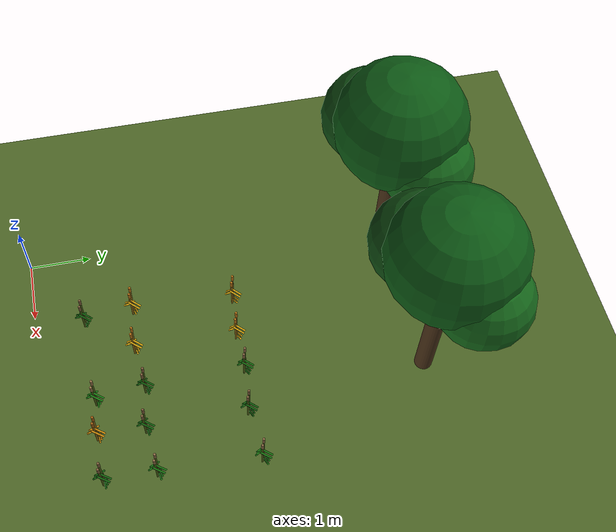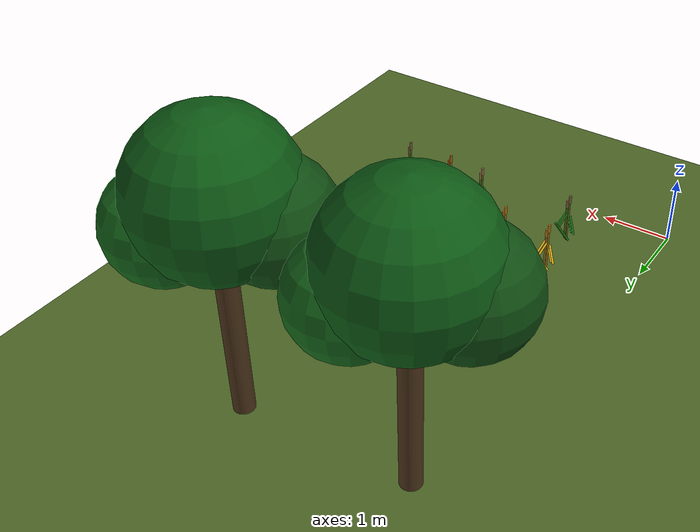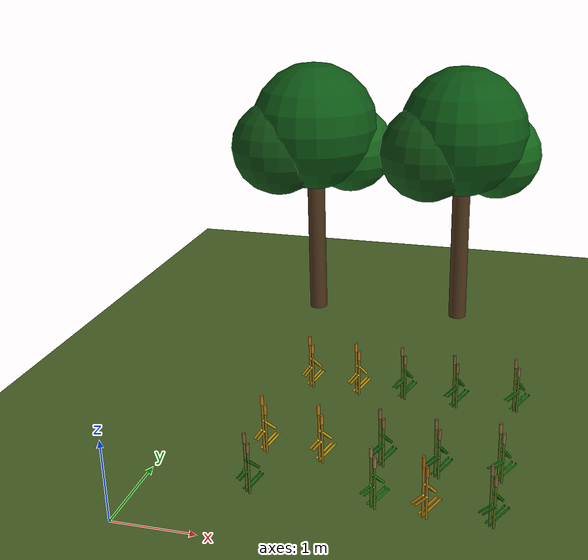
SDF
<sdf version="1.6">
 <world name="default">
  <model name="ground">
   <static>true</static>
   <link name="link">
    <collision name="col"><geometry><plane><normal>0 0 1</normal><size>40 40</size></plane></geometry></collision>
    <visual name="vis">
     <geometry><plane><normal>0 0 1</normal><size>40 40</size></plane></geometry>
     <material><ambient>0.30 0.40 0.15 1</ambient><diffuse>0.30 0.40 0.15 1</diffuse></material>
    </visual>
   </link>
  </model>
  <model name="plant_11">
   <static>true</static>
   <pose>1.25 0.82 0 0 0 0</pose>
   <link name="link">
    <visual name="stem_0">
     <pose>0.000 0.000 0.320 0.000 0.000 0.000</pose>
     <geometry><cylinder><radius>0.014</radius><length>0.64</length></cylinder></geometry>
     <material><ambient>0.30 0.38 0.08 1</ambient><diffuse>0.30 0.38 0.08 1</diffuse></material>
    </visual>
    <visual name="leaf_0_0">
     <pose>0.050 0.040 0.130 0.000 0.700 0.150</pose>
     <geometry><cylinder><radius>0.014</radius><length>0.3</length></cylinder></geometry>
     <material><ambient>0.08 0.42 0.05 1</ambient><diffuse>0.08 0.42 0.05 1</diffuse></material>
    </visual>
    <visual name="leaf_0_1">
     <pose>-0.050 -0.040 0.250 0.000 -0.720 2.400</pose>
     <geometry><cylinder><radius>0.014</radius><length>0.28</length></cylinder></geometry>
     <material><ambient>0.08 0.42 0.05 1</ambient><diffuse>0.08 0.42 0.05 1</diffuse></material>
    </visual>
    <visual name="leaf_0_2">
     <pose>0.050 0.040 0.360 0.000 0.780 4.400</pose>
     <geometry><cylinder><radius>0.014</radius><length>0.24</length></cylinder></geometry>
     <material><ambient>0.08 0.42 0.05 1</ambient><diffuse>0.08 0.42 0.05 1</diffuse></material>
    </visual>
    <visual name="ear_0">
     <pose>0.000 0.000 0.700 0.000 0.000 0.000</pose>
     <geometry><cylinder><radius>0.02</radius><length>0.12</length></cylinder></geometry>
     <material><ambient>0.48 0.36 0.22 1</ambient><diffuse>0.48 0.36 0.22 1</diffuse></material>
    </visual>
    <visual name="stem_1">
     <pose>0.045 -0.025 0.265 0.000 0.000 0.000</pose>
     <geometry><cylinder><radius>0.014</radius><length>0.53</length></cylinder></geometry>
     <material><ambient>0.30 0.38 0.08 1</ambient><diffuse>0.30 0.38 0.08 1</diffuse></material>
    </visual>
    <visual name="leaf_1_0">
     <pose>0.095 0.015 0.130 0.000 0.700 0.150</pose>
     <geometry><cylinder><radius>0.014</radius><length>0.3</length></cylinder></geometry>
     <material><ambient>0.08 0.42 0.05 1</ambient><diffuse>0.08 0.42 0.05 1</diffuse></material>
    </visual>
    <visual name="leaf_1_1">
     <pose>-0.005 -0.065 0.250 0.000 -0.720 2.400</pose>
     <geometry><cylinder><radius>0.014</radius><length>0.28</length></cylinder></geometry>
     <material><ambient>0.08 0.42 0.05 1</ambient><diffuse>0.08 0.42 0.05 1</diffuse></material>
    </visual>
    <visual name="leaf_1_2">
     <pose>0.095 0.015 0.360 0.000 0.780 4.400</pose>
     <geometry><cylinder><radius>0.014</radius><length>0.24</length></cylinder></geometry>
     <material><ambient>0.08 0.42 0.05 1</ambient><diffuse>0.08 0.42 0.05 1</diffuse></material>
    </visual>
    <visual name="ear_1">
     <pose>0.045 -0.025 0.590 0.000 0.000 0.000</pose>
     <geometry><cylinder><radius>0.02</radius><length>0.12</length></cylinder></geometry>
     <material><ambient>0.48 0.36 0.22 1</ambient><diffuse>0.48 0.36 0.22 1</diffuse></material>
    </visual>
   </link>
  </model>
  <model name="plant_13">
   <static>true</static>
   <pose>2.68 0.86 0 0 0 0</pose>
   <link name="link">
    <visual name="stem_0">
     <pose>0.000 0.000 0.320 0.000 0.000 0.000</pose>
     <geometry><cylinder><radius>0.014</radius><length>0.64</length></cylinder></geometry>
     <material><ambient>0.30 0.38 0.08 1</ambient><diffuse>0.30 0.38 0.08 1</diffuse></material>
    </visual>
    <visual name="leaf_0_0">
     <pose>0.050 0.040 0.130 0.000 0.700 0.150</pose>
     <geometry><cylinder><radius>0.014</radius><length>0.3</length></cylinder></geometry>
     <material><ambient>0.12 0.55 0.08 1</ambient><diffuse>0.12 0.55 0.08 1</diffuse></material>
    </visual>
    <visual name="leaf_0_1">
     <pose>-0.050 -0.040 0.250 0.000 -0.720 2.400</pose>
     <geometry><cylinder><radius>0.014</radius><length>0.28</length></cylinder></geometry>
     <material><ambient>0.12 0.55 0.08 1</ambient><diffuse>0.12 0.55 0.08 1</diffuse></material>
    </visual>
    <visual name="leaf_0_2">
     <pose>0.050 0.040 0.360 0.000 0.780 4.400</pose>
     <geometry><cylinder><radius>0.014</radius><length>0.24</length></cylinder></geometry>
     <material><ambient>0.12 0.55 0.08 1</ambient><diffuse>0.12 0.55 0.08 1</diffuse></material>
    </visual>
    <visual name="ear_0">
     <pose>0.000 0.000 0.700 0.000 0.000 0.000</pose>
     <geometry><cylinder><radius>0.02</radius><length>0.12</length></cylinder></geometry>
     <material><ambient>0.56 0.43 0.26 1</ambient><diffuse>0.56 0.43 0.26 1</diffuse></material>
    </visual>
    <visual name="stem_1">
     <pose>0.045 -0.025 0.265 0.000 0.000 0.000</pose>
     <geometry><cylinder><radius>0.014</radius><length>0.53</length></cylinder></geometry>
     <material><ambient>0.30 0.38 0.08 1</ambient><diffuse>0.30 0.38 0.08 1</diffuse></material>
    </visual>
    <visual name="leaf_1_0">
     <pose>0.095 0.015 0.130 0.000 0.700 0.150</pose>
     <geometry><cylinder><radius>0.014</radius><length>0.3</length></cylinder></geometry>
     <material><ambient>0.12 0.55 0.08 1</ambient><diffuse>0.12 0.55 0.08 1</diffuse></material>
    </visual>
    <visual name="leaf_1_1">
     <pose>-0.005 -0.065 0.250 0.000 -0.720 2.400</pose>
     <geometry><cylinder><radius>0.014</radius><length>0.28</length></cylinder></geometry>
     <material><ambient>0.12 0.55 0.08 1</ambient><diffuse>0.12 0.55 0.08 1</diffuse></material>
    </visual>
    <visual name="leaf_1_2">
     <pose>0.095 0.015 0.360 0.000 0.780 4.400</pose>
     <geometry><cylinder><radius>0.014</radius><length>0.24</length></cylinder></geometry>
     <material><ambient>0.12 0.55 0.08 1</ambient><diffuse>0.12 0.55 0.08 1</diffuse></material>
    </visual>
    <visual name="ear_1">
     <pose>0.045 -0.025 0.590 0.000 0.000 0.000</pose>
     <geometry><cylinder><radius>0.02</radius><length>0.12</length></cylinder></geometry>
     <material><ambient>0.56 0.43 0.26 1</ambient><diffuse>0.56 0.43 0.26 1</diffuse></material>
    </visual>
   </link>
  </model>
  <model name="plant_14">
   <static>true</static>
   <pose>3.26 0.82 0 0 0 0</pose>
   <link name="link">
    <visual name="stem_0">
     <pose>0.000 0.000 0.320 0.000 0.000 0.000</pose>
     <geometry><cylinder><radius>0.014</radius><length>0.64</length></cylinder></geometry>
     <material><ambient>0.55 0.42 0.08 1</ambient><diffuse>0.55 0.42 0.08 1</diffuse></material>
    </visual>
    <visual name="leaf_0_0">
     <pose>0.050 0.040 0.130 0.000 0.700 0.150</pose>
     <geometry><cylinder><radius>0.014</radius><length>0.3</length></cylinder></geometry>
     <material><ambient>0.86 0.58 0.04 1</ambient><diffuse>0.86 0.58 0.04 1</diffuse></material>
    </visual>
    <visual name="leaf_0_1">
     <pose>-0.050 -0.040 0.250 0.000 -0.720 2.400</pose>
     <geometry><cylinder><radius>0.014</radius><length>0.28</length></cylinder></geometry>
     <material><ambient>0.86 0.58 0.04 1</ambient><diffuse>0.86 0.58 0.04 1</diffuse></material>
    </visual>
    <visual name="leaf_0_2">
     <pose>0.050 0.040 0.360 0.000 0.780 4.400</pose>
     <geometry><cylinder><radius>0.014</radius><length>0.24</length></cylinder></geometry>
     <material><ambient>0.86 0.58 0.04 1</ambient><diffuse>0.86 0.58 0.04 1</diffuse></material>
    </visual>
    <visual name="ear_0">
     <pose>0.000 0.000 0.700 0.000 0.000 0.000</pose>
     <geometry><cylinder><radius>0.02</radius><length>0.12</length></cylinder></geometry>
     <material><ambient>0.62 0.36 0.06 1</ambient><diffuse>0.62 0.36 0.06 1</diffuse></material>
    </visual>
    <visual name="stem_1">
     <pose>0.045 -0.025 0.265 0.000 0.000 0.000</pose>
     <geometry><cylinder><radius>0.014</radius><length>0.53</length></cylinder></geometry>
     <material><ambient>0.55 0.42 0.08 1</ambient><diffuse>0.55 0.42 0.08 1</diffuse></material>
    </visual>
    <visual name="leaf_1_0">
     <pose>0.095 0.015 0.130 0.000 0.700 0.150</pose>
     <geometry><cylinder><radius>0.014</radius><length>0.3</length></cylinder></geometry>
     <material><ambient>0.86 0.58 0.04 1</ambient><diffuse>0.86 0.58 0.04 1</diffuse></material>
    </visual>
    <visual name="leaf_1_1">
     <pose>-0.005 -0.065 0.250 0.000 -0.720 2.400</pose>
     <geometry><cylinder><radius>0.014</radius><length>0.28</length></cylinder></geometry>
     <material><ambient>0.86 0.58 0.04 1</ambient><diffuse>0.86 0.58 0.04 1</diffuse></material>
    </visual>
    <visual name="leaf_1_2">
     <pose>0.095 0.015 0.360 0.000 0.780 4.400</pose>
     <geometry><cylinder><radius>0.014</radius><length>0.24</length></cylinder></geometry>
     <material><ambient>0.86 0.58 0.04 1</ambient><diffuse>0.86 0.58 0.04 1</diffuse></material>
    </visual>
    <visual name="ear_1">
     <pose>0.045 -0.025 0.590 0.000 0.000 0.000</pose>
     <geometry><cylinder><radius>0.02</radius><length>0.12</length></cylinder></geometry>
     <material><ambient>0.62 0.36 0.06 1</ambient><diffuse>0.62 0.36 0.06 1</diffuse></material>
    </visual>
   </link>
  </model>
  <model name="plant_15">
   <static>true</static>
   <pose>3.98 0.83 0 0 0 0</pose>
   <link name="link">
    <visual name="stem_0">
     <pose>0.000 0.000 0.320 0.000 0.000 0.000</pose>
     <geometry><cylinder><radius>0.014</radius><length>0.64</length></cylinder></geometry>
     <material><ambient>0.30 0.38 0.08 1</ambient><diffuse>0.30 0.38 0.08 1</diffuse></material>
    </visual>
    <visual name="leaf_0_0">
     <pose>0.050 0.040 0.130 0.000 0.700 0.150</pose>
     <geometry><cylinder><radius>0.014</radius><length>0.3</length></cylinder></geometry>
     <material><ambient>0.08 0.42 0.05 1</ambient><diffuse>0.08 0.42 0.05 1</diffuse></material>
    </visual>
    <visual name="leaf_0_1">
     <pose>-0.050 -0.040 0.250 0.000 -0.720 2.400</pose>
     <geometry><cylinder><radius>0.014</radius><length>0.28</length></cylinder></geometry>
     <material><ambient>0.08 0.42 0.05 1</ambient><diffuse>0.08 0.42 0.05 1</diffuse></material>
    </visual>
    <visual name="leaf_0_2">
     <pose>0.050 0.040 0.360 0.000 0.780 4.400</pose>
     <geometry><cylinder><radius>0.014</radius><length>0.24</length></cylinder></geometry>
     <material><ambient>0.08 0.42 0.05 1</ambient><diffuse>0.08 0.42 0.05 1</diffuse></material>
    </visual>
    <visual name="ear_0">
     <pose>0.000 0.000 0.700 0.000 0.000 0.000</pose>
     <geometry><cylinder><radius>0.02</radius><length>0.12</length></cylinder></geometry>
     <material><ambient>0.48 0.36 0.22 1</ambient><diffuse>0.48 0.36 0.22 1</diffuse></material>
    </visual>
    <visual name="stem_1">
     <pose>0.045 -0.025 0.265 0.000 0.000 0.000</pose>
     <geometry><cylinder><radius>0.014</radius><length>0.53</length></cylinder></geometry>
     <material><ambient>0.30 0.38 0.08 1</ambient><diffuse>0.30 0.38 0.08 1</diffuse></material>
    </visual>
    <visual name="leaf_1_0">
     <pose>0.095 0.015 0.130 0.000 0.700 0.150</pose>
     <geometry><cylinder><radius>0.014</radius><length>0.3</length></cylinder></geometry>
     <material><ambient>0.08 0.42 0.05 1</ambient><diffuse>0.08 0.42 0.05 1</diffuse></material>
    </visual>
    <visual name="leaf_1_1">
     <pose>-0.005 -0.065 0.250 0.000 -0.720 2.400</pose>
     <geometry><cylinder><radius>0.014</radius><length>0.28</length></cylinder></geometry>
     <material><ambient>0.08 0.42 0.05 1</ambient><diffuse>0.08 0.42 0.05 1</diffuse></material>
    </visual>
    <visual name="leaf_1_2">
     <pose>0.095 0.015 0.360 0.000 0.780 4.400</pose>
     <geometry><cylinder><radius>0.014</radius><length>0.24</length></cylinder></geometry>
     <material><ambient>0.08 0.42 0.05 1</ambient><diffuse>0.08 0.42 0.05 1</diffuse></material>
    </visual>
    <visual name="ear_1">
     <pose>0.045 -0.025 0.590 0.000 0.000 0.000</pose>
     <geometry><cylinder><radius>0.02</radius><length>0.12</length></cylinder></geometry>
     <material><ambient>0.48 0.36 0.22 1</ambient><diffuse>0.48 0.36 0.22 1</diffuse></material>
    </visual>
   </link>
  </model>
  <model name="plant_21">
   <static>true</static>
   <pose>1.17 1.62 0 0 0 0</pose>
   <link name="link">
    <visual name="stem_0">
     <pose>0.000 0.000 0.320 0.000 0.000 0.000</pose>
     <geometry><cylinder><radius>0.014</radius><length>0.64</length></cylinder></geometry>
     <material><ambient>0.55 0.42 0.08 1</ambient><diffuse>0.55 0.42 0.08 1</diffuse></material>
    </visual>
    <visual name="leaf_0_0">
     <pose>0.050 0.040 0.130 0.000 0.700 0.150</pose>
     <geometry><cylinder><radius>0.014</radius><length>0.3</length></cylinder></geometry>
     <material><ambient>0.95 0.73 0.06 1</ambient><diffuse>0.95 0.73 0.06 1</diffuse></material>
    </visual>
    <visual name="leaf_0_1">
     <pose>-0.050 -0.040 0.250 0.000 -0.720 2.400</pose>
     <geometry><cylinder><radius>0.014</radius><length>0.28</length></cylinder></geometry>
     <material><ambient>0.95 0.73 0.06 1</ambient><diffuse>0.95 0.73 0.06 1</diffuse></material>
    </visual>
    <visual name="leaf_0_2">
     <pose>0.050 0.040 0.360 0.000 0.780 4.400</pose>
     <geometry><cylinder><radius>0.014</radius><length>0.24</length></cylinder></geometry>
     <material><ambient>0.95 0.73 0.06 1</ambient><diffuse>0.95 0.73 0.06 1</diffuse></material>
    </visual>
    <visual name="ear_0">
     <pose>0.000 0.000 0.700 0.000 0.000 0.000</pose>
     <geometry><cylinder><radius>0.02</radius><length>0.12</length></cylinder></geometry>
     <material><ambient>0.72 0.45 0.08 1</ambient><diffuse>0.72 0.45 0.08 1</diffuse></material>
    </visual>
    <visual name="stem_1">
     <pose>0.045 -0.025 0.265 0.000 0.000 0.000</pose>
     <geometry><cylinder><radius>0.014</radius><length>0.53</length></cylinder></geometry>
     <material><ambient>0.55 0.42 0.08 1</ambient><diffuse>0.55 0.42 0.08 1</diffuse></material>
    </visual>
    <visual name="leaf_1_0">
     <pose>0.095 0.015 0.130 0.000 0.700 0.150</pose>
     <geometry><cylinder><radius>0.014</radius><length>0.3</length></cylinder></geometry>
     <material><ambient>0.95 0.73 0.06 1</ambient><diffuse>0.95 0.73 0.06 1</diffuse></material>
    </visual>
    <visual name="leaf_1_1">
     <pose>-0.005 -0.065 0.250 0.000 -0.720 2.400</pose>
     <geometry><cylinder><radius>0.014</radius><length>0.28</length></cylinder></geometry>
     <material><ambient>0.95 0.73 0.06 1</ambient><diffuse>0.95 0.73 0.06 1</diffuse></material>
    </visual>
    <visual name="leaf_1_2">
     <pose>0.095 0.015 0.360 0.000 0.780 4.400</pose>
     <geometry><cylinder><radius>0.014</radius><length>0.24</length></cylinder></geometry>
     <material><ambient>0.95 0.73 0.06 1</ambient><diffuse>0.95 0.73 0.06 1</diffuse></material>
    </visual>
    <visual name="ear_1">
     <pose>0.045 -0.025 0.590 0.000 0.000 0.000</pose>
     <geometry><cylinder><radius>0.02</radius><length>0.12</length></cylinder></geometry>
     <material><ambient>0.72 0.45 0.08 1</ambient><diffuse>0.72 0.45 0.08 1</diffuse></material>
    </visual>
   </link>
  </model>
  <model name="plant_22">
   <static>true</static>
   <pose>1.89 1.56 0 0 0 0</pose>
   <link name="link">
    <visual name="stem_0">
     <pose>0.000 0.000 0.320 0.000 0.000 0.000</pose>
     <geometry><cylinder><radius>0.014</radius><length>0.64</length></cylinder></geometry>
     <material><ambient>0.55 0.42 0.08 1</ambient><diffuse>0.55 0.42 0.08 1</diffuse></material>
    </visual>
    <visual name="leaf_0_0">
     <pose>0.050 0.040 0.130 0.000 0.700 0.150</pose>
     <geometry><cylinder><radius>0.014</radius><length>0.3</length></cylinder></geometry>
     <material><ambient>0.95 0.73 0.06 1</ambient><diffuse>0.95 0.73 0.06 1</diffuse></material>
    </visual>
    <visual name="leaf_0_1">
     <pose>-0.050 -0.040 0.250 0.000 -0.720 2.400</pose>
     <geometry><cylinder><radius>0.014</radius><length>0.28</length></cylinder></geometry>
     <material><ambient>0.95 0.73 0.06 1</ambient><diffuse>0.95 0.73 0.06 1</diffuse></material>
    </visual>
    <visual name="leaf_0_2">
     <pose>0.050 0.040 0.360 0.000 0.780 4.400</pose>
     <geometry><cylinder><radius>0.014</radius><length>0.24</length></cylinder></geometry>
     <material><ambient>0.95 0.73 0.06 1</ambient><diffuse>0.95 0.73 0.06 1</diffuse></material>
    </visual>
    <visual name="ear_0">
     <pose>0.000 0.000 0.700 0.000 0.000 0.000</pose>
     <geometry><cylinder><radius>0.02</radius><length>0.12</length></cylinder></geometry>
     <material><ambient>0.72 0.45 0.08 1</ambient><diffuse>0.72 0.45 0.08 1</diffuse></material>
    </visual>
    <visual name="stem_1">
     <pose>0.045 -0.025 0.265 0.000 0.000 0.000</pose>
     <geometry><cylinder><radius>0.014</radius><length>0.53</length></cylinder></geometry>
     <material><ambient>0.55 0.42 0.08 1</ambient><diffuse>0.55 0.42 0.08 1</diffuse></material>
    </visual>
    <visual name="leaf_1_0">
     <pose>0.095 0.015 0.130 0.000 0.700 0.150</pose>
     <geometry><cylinder><radius>0.014</radius><length>0.3</length></cylinder></geometry>
     <material><ambient>0.95 0.73 0.06 1</ambient><diffuse>0.95 0.73 0.06 1</diffuse></material>
    </visual>
    <visual name="leaf_1_1">
     <pose>-0.005 -0.065 0.250 0.000 -0.720 2.400</pose>
     <geometry><cylinder><radius>0.014</radius><length>0.28</length></cylinder></geometry>
     <material><ambient>0.95 0.73 0.06 1</ambient><diffuse>0.95 0.73 0.06 1</diffuse></material>
    </visual>
    <visual name="leaf_1_2">
     <pose>0.095 0.015 0.360 0.000 0.780 4.400</pose>
     <geometry><cylinder><radius>0.014</radius><length>0.24</length></cylinder></geometry>
     <material><ambient>0.95 0.73 0.06 1</ambient><diffuse>0.95 0.73 0.06 1</diffuse></material>
    </visual>
    <visual name="ear_1">
     <pose>0.045 -0.025 0.590 0.000 0.000 0.000</pose>
     <geometry><cylinder><radius>0.02</radius><length>0.12</length></cylinder></geometry>
     <material><ambient>0.72 0.45 0.08 1</ambient><diffuse>0.72 0.45 0.08 1</diffuse></material>
    </visual>
   </link>
  </model>
  <model name="plant_23">
   <static>true</static>
   <pose>2.61 1.64 0 0 0 0</pose>
   <link name="link">
    <visual name="stem_0">
     <pose>0.000 0.000 0.320 0.000 0.000 0.000</pose>
     <geometry><cylinder><radius>0.014</radius><length>0.64</length></cylinder></geometry>
     <material><ambient>0.30 0.38 0.08 1</ambient><diffuse>0.30 0.38 0.08 1</diffuse></material>
    </visual>
    <visual name="leaf_0_0">
     <pose>0.050 0.040 0.130 0.000 0.700 0.150</pose>
     <geometry><cylinder><radius>0.014</radius><length>0.3</length></cylinder></geometry>
     <material><ambient>0.08 0.42 0.05 1</ambient><diffuse>0.08 0.42 0.05 1</diffuse></material>
    </visual>
    <visual name="leaf_0_1">
     <pose>-0.050 -0.040 0.250 0.000 -0.720 2.400</pose>
     <geometry><cylinder><radius>0.014</radius><length>0.28</length></cylinder></geometry>
     <material><ambient>0.08 0.42 0.05 1</ambient><diffuse>0.08 0.42 0.05 1</diffuse></material>
    </visual>
    <visual name="leaf_0_2">
     <pose>0.050 0.040 0.360 0.000 0.780 4.400</pose>
     <geometry><cylinder><radius>0.014</radius><length>0.24</length></cylinder></geometry>
     <material><ambient>0.08 0.42 0.05 1</ambient><diffuse>0.08 0.42 0.05 1</diffuse></material>
    </visual>
    <visual name="ear_0">
     <pose>0.000 0.000 0.700 0.000 0.000 0.000</pose>
     <geometry><cylinder><radius>0.02</radius><length>0.12</length></cylinder></geometry>
     <material><ambient>0.48 0.36 0.22 1</ambient><diffuse>0.48 0.36 0.22 1</diffuse></material>
    </visual>
    <visual name="stem_1">
     <pose>0.045 -0.025 0.265 0.000 0.000 0.000</pose>
     <geometry><cylinder><radius>0.014</radius><length>0.53</length></cylinder></geometry>
     <material><ambient>0.30 0.38 0.08 1</ambient><diffuse>0.30 0.38 0.08 1</diffuse></material>
    </visual>
    <visual name="leaf_1_0">
     <pose>0.095 0.015 0.130 0.000 0.700 0.150</pose>
     <geometry><cylinder><radius>0.014</radius><length>0.3</length></cylinder></geometry>
     <material><ambient>0.08 0.42 0.05 1</ambient><diffuse>0.08 0.42 0.05 1</diffuse></material>
    </visual>
    <visual name="leaf_1_1">
     <pose>-0.005 -0.065 0.250 0.000 -0.720 2.400</pose>
     <geometry><cylinder><radius>0.014</radius><length>0.28</length></cylinder></geometry>
     <material><ambient>0.08 0.42 0.05 1</ambient><diffuse>0.08 0.42 0.05 1</diffuse></material>
    </visual>
    <visual name="leaf_1_2">
     <pose>0.095 0.015 0.360 0.000 0.780 4.400</pose>
     <geometry><cylinder><radius>0.014</radius><length>0.24</length></cylinder></geometry>
     <material><ambient>0.08 0.42 0.05 1</ambient><diffuse>0.08 0.42 0.05 1</diffuse></material>
    </visual>
    <visual name="ear_1">
     <pose>0.045 -0.025 0.590 0.000 0.000 0.000</pose>
     <geometry><cylinder><radius>0.02</radius><length>0.12</length></cylinder></geometry>
     <material><ambient>0.48 0.36 0.22 1</ambient><diffuse>0.48 0.36 0.22 1</diffuse></material>
    </visual>
   </link>
  </model>
  <model name="plant_24">
   <static>true</static>
   <pose>3.28 1.56 0 0 0 0</pose>
   <link name="link">
    <visual name="stem_0">
     <pose>0.000 0.000 0.320 0.000 0.000 0.000</pose>
     <geometry><cylinder><radius>0.014</radius><length>0.64</length></cylinder></geometry>
     <material><ambient>0.30 0.38 0.08 1</ambient><diffuse>0.30 0.38 0.08 1</diffuse></material>
    </visual>
    <visual name="leaf_0_0">
     <pose>0.050 0.040 0.130 0.000 0.700 0.150</pose>
     <geometry><cylinder><radius>0.014</radius><length>0.3</length></cylinder></geometry>
     <material><ambient>0.08 0.42 0.05 1</ambient><diffuse>0.08 0.42 0.05 1</diffuse></material>
    </visual>
    <visual name="leaf_0_1">
     <pose>-0.050 -0.040 0.250 0.000 -0.720 2.400</pose>
     <geometry><cylinder><radius>0.014</radius><length>0.28</length></cylinder></geometry>
     <material><ambient>0.08 0.42 0.05 1</ambient><diffuse>0.08 0.42 0.05 1</diffuse></material>
    </visual>
    <visual name="leaf_0_2">
     <pose>0.050 0.040 0.360 0.000 0.780 4.400</pose>
     <geometry><cylinder><radius>0.014</radius><length>0.24</length></cylinder></geometry>
     <material><ambient>0.08 0.42 0.05 1</ambient><diffuse>0.08 0.42 0.05 1</diffuse></material>
    </visual>
    <visual name="ear_0">
     <pose>0.000 0.000 0.700 0.000 0.000 0.000</pose>
     <geometry><cylinder><radius>0.02</radius><length>0.12</length></cylinder></geometry>
     <material><ambient>0.48 0.36 0.22 1</ambient><diffuse>0.48 0.36 0.22 1</diffuse></material>
    </visual>
    <visual name="stem_1">
     <pose>0.045 -0.025 0.265 0.000 0.000 0.000</pose>
     <geometry><cylinder><radius>0.014</radius><length>0.53</length></cylinder></geometry>
     <material><ambient>0.30 0.38 0.08 1</ambient><diffuse>0.30 0.38 0.08 1</diffuse></material>
    </visual>
    <visual name="leaf_1_0">
     <pose>0.095 0.015 0.130 0.000 0.700 0.150</pose>
     <geometry><cylinder><radius>0.014</radius><length>0.3</length></cylinder></geometry>
     <material><ambient>0.08 0.42 0.05 1</ambient><diffuse>0.08 0.42 0.05 1</diffuse></material>
    </visual>
    <visual name="leaf_1_1">
     <pose>-0.005 -0.065 0.250 0.000 -0.720 2.400</pose>
     <geometry><cylinder><radius>0.014</radius><length>0.28</length></cylinder></geometry>
     <material><ambient>0.08 0.42 0.05 1</ambient><diffuse>0.08 0.42 0.05 1</diffuse></material>
    </visual>
    <visual name="leaf_1_2">
     <pose>0.095 0.015 0.360 0.000 0.780 4.400</pose>
     <geometry><cylinder><radius>0.014</radius><length>0.24</length></cylinder></geometry>
     <material><ambient>0.08 0.42 0.05 1</ambient><diffuse>0.08 0.42 0.05 1</diffuse></material>
    </visual>
    <visual name="ear_1">
     <pose>0.045 -0.025 0.590 0.000 0.000 0.000</pose>
     <geometry><cylinder><radius>0.02</radius><length>0.12</length></cylinder></geometry>
     <material><ambient>0.48 0.36 0.22 1</ambient><diffuse>0.48 0.36 0.22 1</diffuse></material>
    </visual>
   </link>
  </model>
  <model name="plant_25">
   <static>true</static>
   <pose>4.00 1.64 0 0 0 0</pose>
   <link name="link">
    <visual name="stem_0">
     <pose>0.000 0.000 0.320 0.000 0.000 0.000</pose>
     <geometry><cylinder><radius>0.014</radius><length>0.64</length></cylinder></geometry>
     <material><ambient>0.30 0.38 0.08 1</ambient><diffuse>0.30 0.38 0.08 1</diffuse></material>
    </visual>
    <visual name="leaf_0_0">
     <pose>0.050 0.040 0.130 0.000 0.700 0.150</pose>
     <geometry><cylinder><radius>0.014</radius><length>0.3</length></cylinder></geometry>
     <material><ambient>0.10 0.48 0.06 1</ambient><diffuse>0.10 0.48 0.06 1</diffuse></material>
    </visual>
    <visual name="leaf_0_1">
     <pose>-0.050 -0.040 0.250 0.000 -0.720 2.400</pose>
     <geometry><cylinder><radius>0.014</radius><length>0.28</length></cylinder></geometry>
     <material><ambient>0.10 0.48 0.06 1</ambient><diffuse>0.10 0.48 0.06 1</diffuse></material>
    </visual>
    <visual name="leaf_0_2">
     <pose>0.050 0.040 0.360 0.000 0.780 4.400</pose>
     <geometry><cylinder><radius>0.014</radius><length>0.24</length></cylinder></geometry>
     <material><ambient>0.10 0.48 0.06 1</ambient><diffuse>0.10 0.48 0.06 1</diffuse></material>
    </visual>
    <visual name="ear_0">
     <pose>0.000 0.000 0.700 0.000 0.000 0.000</pose>
     <geometry><cylinder><radius>0.02</radius><length>0.12</length></cylinder></geometry>
     <material><ambient>0.52 0.40 0.25 1</ambient><diffuse>0.52 0.40 0.25 1</diffuse></material>
    </visual>
    <visual name="stem_1">
     <pose>0.045 -0.025 0.265 0.000 0.000 0.000</pose>
     <geometry><cylinder><radius>0.014</radius><length>0.53</length></cylinder></geometry>
     <material><ambient>0.30 0.38 0.08 1</ambient><diffuse>0.30 0.38 0.08 1</diffuse></material>
    </visual>
    <visual name="leaf_1_0">
     <pose>0.095 0.015 0.130 0.000 0.700 0.150</pose>
     <geometry><cylinder><radius>0.014</radius><length>0.3</length></cylinder></geometry>
     <material><ambient>0.10 0.48 0.06 1</ambient><diffuse>0.10 0.48 0.06 1</diffuse></material>
    </visual>
    <visual name="leaf_1_1">
     <pose>-0.005 -0.065 0.250 0.000 -0.720 2.400</pose>
     <geometry><cylinder><radius>0.014</radius><length>0.28</length></cylinder></geometry>
     <material><ambient>0.10 0.48 0.06 1</ambient><diffuse>0.10 0.48 0.06 1</diffuse></material>
    </visual>
    <visual name="leaf_1_2">
     <pose>0.095 0.015 0.360 0.000 0.780 4.400</pose>
     <geometry><cylinder><radius>0.014</radius><length>0.24</length></cylinder></geometry>
     <material><ambient>0.10 0.48 0.06 1</ambient><diffuse>0.10 0.48 0.06 1</diffuse></material>
    </visual>
    <visual name="ear_1">
     <pose>0.045 -0.025 0.590 0.000 0.000 0.000</pose>
     <geometry><cylinder><radius>0.02</radius><length>0.12</length></cylinder></geometry>
     <material><ambient>0.52 0.40 0.25 1</ambient><diffuse>0.52 0.40 0.25 1</diffuse></material>
    </visual>
   </link>
  </model>
  <model name="plant_31">
   <static>true</static>
   <pose>1.27 3.26 0 0 0 0</pose>
   <link name="link">
    <visual name="stem_0">
     <pose>0.000 0.000 0.320 0.000 0.000 0.000</pose>
     <geometry><cylinder><radius>0.014</radius><length>0.64</length></cylinder></geometry>
     <material><ambient>0.55 0.42 0.08 1</ambient><diffuse>0.55 0.42 0.08 1</diffuse></material>
    </visual>
    <visual name="leaf_0_0">
     <pose>0.050 0.040 0.130 0.000 0.700 0.150</pose>
     <geometry><cylinder><radius>0.014</radius><length>0.3</length></cylinder></geometry>
     <material><ambient>0.95 0.73 0.06 1</ambient><diffuse>0.95 0.73 0.06 1</diffuse></material>
    </visual>
    <visual name="leaf_0_1">
     <pose>-0.050 -0.040 0.250 0.000 -0.720 2.400</pose>
     <geometry><cylinder><radius>0.014</radius><length>0.28</length></cylinder></geometry>
     <material><ambient>0.95 0.73 0.06 1</ambient><diffuse>0.95 0.73 0.06 1</diffuse></material>
    </visual>
    <visual name="leaf_0_2">
     <pose>0.050 0.040 0.360 0.000 0.780 4.400</pose>
     <geometry><cylinder><radius>0.014</radius><length>0.24</length></cylinder></geometry>
     <material><ambient>0.95 0.73 0.06 1</ambient><diffuse>0.95 0.73 0.06 1</diffuse></material>
    </visual>
    <visual name="ear_0">
     <pose>0.000 0.000 0.700 0.000 0.000 0.000</pose>
     <geometry><cylinder><radius>0.02</radius><length>0.12</length></cylinder></geometry>
     <material><ambient>0.72 0.45 0.08 1</ambient><diffuse>0.72 0.45 0.08 1</diffuse></material>
    </visual>
    <visual name="stem_1">
     <pose>0.045 -0.025 0.265 0.000 0.000 0.000</pose>
     <geometry><cylinder><radius>0.014</radius><length>0.53</length></cylinder></geometry>
     <material><ambient>0.55 0.42 0.08 1</ambient><diffuse>0.55 0.42 0.08 1</diffuse></material>
    </visual>
    <visual name="leaf_1_0">
     <pose>0.095 0.015 0.130 0.000 0.700 0.150</pose>
     <geometry><cylinder><radius>0.014</radius><length>0.3</length></cylinder></geometry>
     <material><ambient>0.95 0.73 0.06 1</ambient><diffuse>0.95 0.73 0.06 1</diffuse></material>
    </visual>
    <visual name="leaf_1_1">
     <pose>-0.005 -0.065 0.250 0.000 -0.720 2.400</pose>
     <geometry><cylinder><radius>0.014</radius><length>0.28</length></cylinder></geometry>
     <material><ambient>0.95 0.73 0.06 1</ambient><diffuse>0.95 0.73 0.06 1</diffuse></material>
    </visual>
    <visual name="leaf_1_2">
     <pose>0.095 0.015 0.360 0.000 0.780 4.400</pose>
     <geometry><cylinder><radius>0.014</radius><length>0.24</length></cylinder></geometry>
     <material><ambient>0.95 0.73 0.06 1</ambient><diffuse>0.95 0.73 0.06 1</diffuse></material>
    </visual>
    <visual name="ear_1">
     <pose>0.045 -0.025 0.590 0.000 0.000 0.000</pose>
     <geometry><cylinder><radius>0.02</radius><length>0.12</length></cylinder></geometry>
     <material><ambient>0.72 0.45 0.08 1</ambient><diffuse>0.72 0.45 0.08 1</diffuse></material>
    </visual>
   </link>
  </model>
  <model name="plant_32">
   <static>true</static>
   <pose>1.94 3.20 0 0 0 0</pose>
   <link name="link">
    <visual name="stem_0">
     <pose>0.000 0.000 0.320 0.000 0.000 0.000</pose>
     <geometry><cylinder><radius>0.014</radius><length>0.64</length></cylinder></geometry>
     <material><ambient>0.55 0.42 0.08 1</ambient><diffuse>0.55 0.42 0.08 1</diffuse></material>
    </visual>
    <visual name="leaf_0_0">
     <pose>0.050 0.040 0.130 0.000 0.700 0.150</pose>
     <geometry><cylinder><radius>0.014</radius><length>0.3</length></cylinder></geometry>
     <material><ambient>0.95 0.73 0.06 1</ambient><diffuse>0.95 0.73 0.06 1</diffuse></material>
    </visual>
    <visual name="leaf_0_1">
     <pose>-0.050 -0.040 0.250 0.000 -0.720 2.400</pose>
     <geometry><cylinder><radius>0.014</radius><length>0.28</length></cylinder></geometry>
     <material><ambient>0.95 0.73 0.06 1</ambient><diffuse>0.95 0.73 0.06 1</diffuse></material>
    </visual>
    <visual name="leaf_0_2">
     <pose>0.050 0.040 0.360 0.000 0.780 4.400</pose>
     <geometry><cylinder><radius>0.014</radius><length>0.24</length></cylinder></geometry>
     <material><ambient>0.95 0.73 0.06 1</ambient><diffuse>0.95 0.73 0.06 1</diffuse></material>
    </visual>
    <visual name="ear_0">
     <pose>0.000 0.000 0.700 0.000 0.000 0.000</pose>
     <geometry><cylinder><radius>0.02</radius><length>0.12</length></cylinder></geometry>
     <material><ambient>0.72 0.45 0.08 1</ambient><diffuse>0.72 0.45 0.08 1</diffuse></material>
    </visual>
    <visual name="stem_1">
     <pose>0.045 -0.025 0.265 0.000 0.000 0.000</pose>
     <geometry><cylinder><radius>0.014</radius><length>0.53</length></cylinder></geometry>
     <material><ambient>0.55 0.42 0.08 1</ambient><diffuse>0.55 0.42 0.08 1</diffuse></material>
    </visual>
    <visual name="leaf_1_0">
     <pose>0.095 0.015 0.130 0.000 0.700 0.150</pose>
     <geometry><cylinder><radius>0.014</radius><length>0.3</length></cylinder></geometry>
     <material><ambient>0.95 0.73 0.06 1</ambient><diffuse>0.95 0.73 0.06 1</diffuse></material>
    </visual>
    <visual name="leaf_1_1">
     <pose>-0.005 -0.065 0.250 0.000 -0.720 2.400</pose>
     <geometry><cylinder><radius>0.014</radius><length>0.28</length></cylinder></geometry>
     <material><ambient>0.95 0.73 0.06 1</ambient><diffuse>0.95 0.73 0.06 1</diffuse></material>
    </visual>
    <visual name="leaf_1_2">
     <pose>0.095 0.015 0.360 0.000 0.780 4.400</pose>
     <geometry><cylinder><radius>0.014</radius><length>0.24</length></cylinder></geometry>
     <material><ambient>0.95 0.73 0.06 1</ambient><diffuse>0.95 0.73 0.06 1</diffuse></material>
    </visual>
    <visual name="ear_1">
     <pose>0.045 -0.025 0.590 0.000 0.000 0.000</pose>
     <geometry><cylinder><radius>0.02</radius><length>0.12</length></cylinder></geometry>
     <material><ambient>0.72 0.45 0.08 1</ambient><diffuse>0.72 0.45 0.08 1</diffuse></material>
    </visual>
   </link>
  </model>
  <model name="plant_33">
   <static>true</static>
   <pose>2.57 3.22 0 0 0 0</pose>
   <link name="link">
    <visual name="stem_0">
     <pose>0.000 0.000 0.320 0.000 0.000 0.000</pose>
     <geometry><cylinder><radius>0.014</radius><length>0.64</length></cylinder></geometry>
     <material><ambient>0.30 0.38 0.08 1</ambient><diffuse>0.30 0.38 0.08 1</diffuse></material>
    </visual>
    <visual name="leaf_0_0">
     <pose>0.050 0.040 0.130 0.000 0.700 0.150</pose>
     <geometry><cylinder><radius>0.014</radius><length>0.3</length></cylinder></geometry>
     <material><ambient>0.10 0.48 0.06 1</ambient><diffuse>0.10 0.48 0.06 1</diffuse></material>
    </visual>
    <visual name="leaf_0_1">
     <pose>-0.050 -0.040 0.250 0.000 -0.720 2.400</pose>
     <geometry><cylinder><radius>0.014</radius><length>0.28</length></cylinder></geometry>
     <material><ambient>0.10 0.48 0.06 1</ambient><diffuse>0.10 0.48 0.06 1</diffuse></material>
    </visual>
    <visual name="leaf_0_2">
     <pose>0.050 0.040 0.360 0.000 0.780 4.400</pose>
     <geometry><cylinder><radius>0.014</radius><length>0.24</length></cylinder></geometry>
     <material><ambient>0.10 0.48 0.06 1</ambient><diffuse>0.10 0.48 0.06 1</diffuse></material>
    </visual>
    <visual name="ear_0">
     <pose>0.000 0.000 0.700 0.000 0.000 0.000</pose>
     <geometry><cylinder><radius>0.02</radius><length>0.12</length></cylinder></geometry>
     <material><ambient>0.52 0.40 0.25 1</ambient><diffuse>0.52 0.40 0.25 1</diffuse></material>
    </visual>
    <visual name="stem_1">
     <pose>0.045 -0.025 0.265 0.000 0.000 0.000</pose>
     <geometry><cylinder><radius>0.014</radius><length>0.53</length></cylinder></geometry>
     <material><ambient>0.30 0.38 0.08 1</ambient><diffuse>0.30 0.38 0.08 1</diffuse></material>
    </visual>
    <visual name="leaf_1_0">
     <pose>0.095 0.015 0.130 0.000 0.700 0.150</pose>
     <geometry><cylinder><radius>0.014</radius><length>0.3</length></cylinder></geometry>
     <material><ambient>0.10 0.48 0.06 1</ambient><diffuse>0.10 0.48 0.06 1</diffuse></material>
    </visual>
    <visual name="leaf_1_1">
     <pose>-0.005 -0.065 0.250 0.000 -0.720 2.400</pose>
     <geometry><cylinder><radius>0.014</radius><length>0.28</length></cylinder></geometry>
     <material><ambient>0.10 0.48 0.06 1</ambient><diffuse>0.10 0.48 0.06 1</diffuse></material>
    </visual>
    <visual name="leaf_1_2">
     <pose>0.095 0.015 0.360 0.000 0.780 4.400</pose>
     <geometry><cylinder><radius>0.014</radius><length>0.24</length></cylinder></geometry>
     <material><ambient>0.10 0.48 0.06 1</ambient><diffuse>0.10 0.48 0.06 1</diffuse></material>
    </visual>
    <visual name="ear_1">
     <pose>0.045 -0.025 0.590 0.000 0.000 0.000</pose>
     <geometry><cylinder><radius>0.02</radius><length>0.12</length></cylinder></geometry>
     <material><ambient>0.52 0.40 0.25 1</ambient><diffuse>0.52 0.40 0.25 1</diffuse></material>
    </visual>
   </link>
  </model>
  <model name="plant_34">
   <static>true</static>
   <pose>3.28 3.15 0 0 0 0</pose>
   <link name="link">
    <visual name="stem_0">
     <pose>0.000 0.000 0.320 0.000 0.000 0.000</pose>
     <geometry><cylinder><radius>0.014</radius><length>0.64</length></cylinder></geometry>
     <material><ambient>0.30 0.38 0.08 1</ambient><diffuse>0.30 0.38 0.08 1</diffuse></material>
    </visual>
    <visual name="leaf_0_0">
     <pose>0.050 0.040 0.130 0.000 0.700 0.150</pose>
     <geometry><cylinder><radius>0.014</radius><length>0.3</length></cylinder></geometry>
     <material><ambient>0.08 0.42 0.05 1</ambient><diffuse>0.08 0.42 0.05 1</diffuse></material>
    </visual>
    <visual name="leaf_0_1">
     <pose>-0.050 -0.040 0.250 0.000 -0.720 2.400</pose>
     <geometry><cylinder><radius>0.014</radius><length>0.28</length></cylinder></geometry>
     <material><ambient>0.08 0.42 0.05 1</ambient><diffuse>0.08 0.42 0.05 1</diffuse></material>
    </visual>
    <visual name="leaf_0_2">
     <pose>0.050 0.040 0.360 0.000 0.780 4.400</pose>
     <geometry><cylinder><radius>0.014</radius><length>0.24</length></cylinder></geometry>
     <material><ambient>0.08 0.42 0.05 1</ambient><diffuse>0.08 0.42 0.05 1</diffuse></material>
    </visual>
    <visual name="ear_0">
     <pose>0.000 0.000 0.700 0.000 0.000 0.000</pose>
     <geometry><cylinder><radius>0.02</radius><length>0.12</length></cylinder></geometry>
     <material><ambient>0.48 0.36 0.22 1</ambient><diffuse>0.48 0.36 0.22 1</diffuse></material>
    </visual>
    <visual name="stem_1">
     <pose>0.045 -0.025 0.265 0.000 0.000 0.000</pose>
     <geometry><cylinder><radius>0.014</radius><length>0.53</length></cylinder></geometry>
     <material><ambient>0.30 0.38 0.08 1</ambient><diffuse>0.30 0.38 0.08 1</diffuse></material>
    </visual>
    <visual name="leaf_1_0">
     <pose>0.095 0.015 0.130 0.000 0.700 0.150</pose>
     <geometry><cylinder><radius>0.014</radius><length>0.3</length></cylinder></geometry>
     <material><ambient>0.08 0.42 0.05 1</ambient><diffuse>0.08 0.42 0.05 1</diffuse></material>
    </visual>
    <visual name="leaf_1_1">
     <pose>-0.005 -0.065 0.250 0.000 -0.720 2.400</pose>
     <geometry><cylinder><radius>0.014</radius><length>0.28</length></cylinder></geometry>
     <material><ambient>0.08 0.42 0.05 1</ambient><diffuse>0.08 0.42 0.05 1</diffuse></material>
    </visual>
    <visual name="leaf_1_2">
     <pose>0.095 0.015 0.360 0.000 0.780 4.400</pose>
     <geometry><cylinder><radius>0.014</radius><length>0.24</length></cylinder></geometry>
     <material><ambient>0.08 0.42 0.05 1</ambient><diffuse>0.08 0.42 0.05 1</diffuse></material>
    </visual>
    <visual name="ear_1">
     <pose>0.045 -0.025 0.590 0.000 0.000 0.000</pose>
     <geometry><cylinder><radius>0.02</radius><length>0.12</length></cylinder></geometry>
     <material><ambient>0.48 0.36 0.22 1</ambient><diffuse>0.48 0.36 0.22 1</diffuse></material>
    </visual>
   </link>
  </model>
  <model name="plant_35">
   <static>true</static>
   <pose>4.07 3.22 0 0 0 0</pose>
   <link name="link">
    <visual name="stem_0">
     <pose>0.000 0.000 0.320 0.000 0.000 0.000</pose>
     <geometry><cylinder><radius>0.014</radius><length>0.64</length></cylinder></geometry>
     <material><ambient>0.30 0.38 0.08 1</ambient><diffuse>0.30 0.38 0.08 1</diffuse></material>
    </visual>
    <visual name="leaf_0_0">
     <pose>0.050 0.040 0.130 0.000 0.700 0.150</pose>
     <geometry><cylinder><radius>0.014</radius><length>0.3</length></cylinder></geometry>
     <material><ambient>0.10 0.48 0.06 1</ambient><diffuse>0.10 0.48 0.06 1</diffuse></material>
    </visual>
    <visual name="leaf_0_1">
     <pose>-0.050 -0.040 0.250 0.000 -0.720 2.400</pose>
     <geometry><cylinder><radius>0.014</radius><length>0.28</length></cylinder></geometry>
     <material><ambient>0.10 0.48 0.06 1</ambient><diffuse>0.10 0.48 0.06 1</diffuse></material>
    </visual>
    <visual name="leaf_0_2">
     <pose>0.050 0.040 0.360 0.000 0.780 4.400</pose>
     <geometry><cylinder><radius>0.014</radius><length>0.24</length></cylinder></geometry>
     <material><ambient>0.10 0.48 0.06 1</ambient><diffuse>0.10 0.48 0.06 1</diffuse></material>
    </visual>
    <visual name="ear_0">
     <pose>0.000 0.000 0.700 0.000 0.000 0.000</pose>
     <geometry><cylinder><radius>0.02</radius><length>0.12</length></cylinder></geometry>
     <material><ambient>0.52 0.40 0.25 1</ambient><diffuse>0.52 0.40 0.25 1</diffuse></material>
    </visual>
    <visual name="stem_1">
     <pose>0.045 -0.025 0.265 0.000 0.000 0.000</pose>
     <geometry><cylinder><radius>0.014</radius><length>0.53</length></cylinder></geometry>
     <material><ambient>0.30 0.38 0.08 1</ambient><diffuse>0.30 0.38 0.08 1</diffuse></material>
    </visual>
    <visual name="leaf_1_0">
     <pose>0.095 0.015 0.130 0.000 0.700 0.150</pose>
     <geometry><cylinder><radius>0.014</radius><length>0.3</length></cylinder></geometry>
     <material><ambient>0.10 0.48 0.06 1</ambient><diffuse>0.10 0.48 0.06 1</diffuse></material>
    </visual>
    <visual name="leaf_1_1">
     <pose>-0.005 -0.065 0.250 0.000 -0.720 2.400</pose>
     <geometry><cylinder><radius>0.014</radius><length>0.28</length></cylinder></geometry>
     <material><ambient>0.10 0.48 0.06 1</ambient><diffuse>0.10 0.48 0.06 1</diffuse></material>
    </visual>
    <visual name="leaf_1_2">
     <pose>0.095 0.015 0.360 0.000 0.780 4.400</pose>
     <geometry><cylinder><radius>0.014</radius><length>0.24</length></cylinder></geometry>
     <material><ambient>0.10 0.48 0.06 1</ambient><diffuse>0.10 0.48 0.06 1</diffuse></material>
    </visual>
    <visual name="ear_1">
     <pose>0.045 -0.025 0.590 0.000 0.000 0.000</pose>
     <geometry><cylinder><radius>0.02</radius><length>0.12</length></cylinder></geometry>
     <material><ambient>0.52 0.40 0.25 1</ambient><diffuse>0.52 0.40 0.25 1</diffuse></material>
    </visual>
   </link>
  </model>
  <model name="tree_n1">
   <static>true</static>
   <pose>0.61 5.93 0 0 0 0</pose>
   <link name="link">
    <collision name="trunk_col">
     <pose>0 0 1.1 0 0 0</pose>
     <geometry><cylinder><radius>0.16</radius><length>2.2</length></cylinder></geometry>
    </collision>
    <visual name="trunk">
     <pose>0 0 1.1 0 0 0</pose>
     <geometry><cylinder><radius>0.14</radius><length>2.2</length></cylinder></geometry>
     <material><ambient>0.30 0.20 0.10 1</ambient><diffuse>0.30 0.20 0.10 1</diffuse></material>
    </visual>
    <visual name="crown1">
     <pose>0 0 3.1 0 0 0</pose>
     <geometry><sphere><radius>1.0</radius></sphere></geometry>
     <material><ambient>0.05 0.35 0.08 1</ambient><diffuse>0.05 0.35 0.08 1</diffuse></material>
    </visual>
    <visual name="crown2">
     <pose>0.5 0.3 2.7 0 0 0</pose>
     <geometry><sphere><radius>0.7</radius></sphere></geometry>
     <material><ambient>0.08 0.40 0.10 1</ambient><diffuse>0.08 0.40 0.10 1</diffuse></material>
    </visual>
    <visual name="crown3">
     <pose>-0.5 -0.3 2.8 0 0 0</pose>
     <geometry><sphere><radius>0.75</radius></sphere></geometry>
     <material><ambient>0.06 0.30 0.07 1</ambient><diffuse>0.06 0.30 0.07 1</diffuse></material>
    </visual>
   </link>
  </model>
  <model name="tree_n2">
   <static>true</static>
   <pose>2.96 6.04 0 0 0 0</pose>
   <link name="link">
    <collision name="trunk_col">
     <pose>0 0 1.1 0 0 0</pose>
     <geometry><cylinder><radius>0.16</radius><length>2.2</length></cylinder></geometry>
    </collision>
    <visual name="trunk">
     <pose>0 0 1.1 0 0 0</pose>
     <geometry><cylinder><radius>0.14</radius><length>2.2</length></cylinder></geometry>
     <material><ambient>0.30 0.20 0.10 1</ambient><diffuse>0.30 0.20 0.10 1</diffuse></material>
    </visual>
    <visual name="crown1">
     <pose>0 0 3.1 0 0 0</pose>
     <geometry><sphere><radius>1.0</radius></sphere></geometry>
     <material><ambient>0.05 0.35 0.08 1</ambient><diffuse>0.05 0.35 0.08 1</diffuse></material>
    </visual>
    <visual name="crown2">
     <pose>0.5 0.3 2.7 0 0 0</pose>
     <geometry><sphere><radius>0.7</radius></sphere></geometry>
     <material><ambient>0.08 0.40 0.10 1</ambient><diffuse>0.08 0.40 0.10 1</diffuse></material>
    </visual>
    <visual name="crown3">
     <pose>-0.5 -0.3 2.8 0 0 0</pose>
     <geometry><sphere><radius>0.75</radius></sphere></geometry>
     <material><ambient>0.06 0.30 0.07 1</ambient><diffuse>0.06 0.30 0.07 1</diffuse></material>
    </visual>
   </link>
  </model>
 </world>
</sdf>
